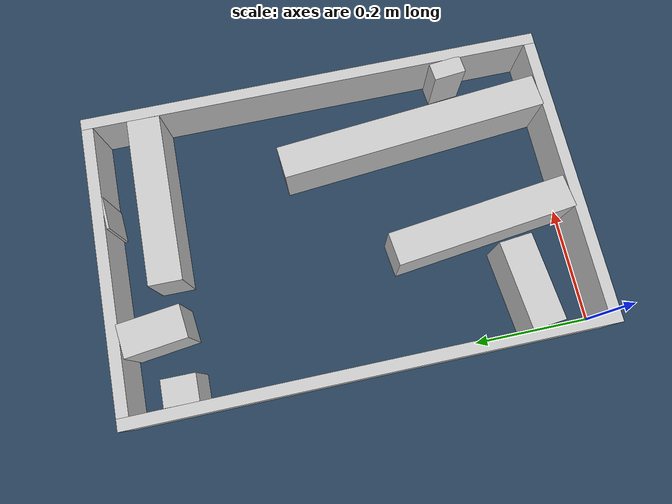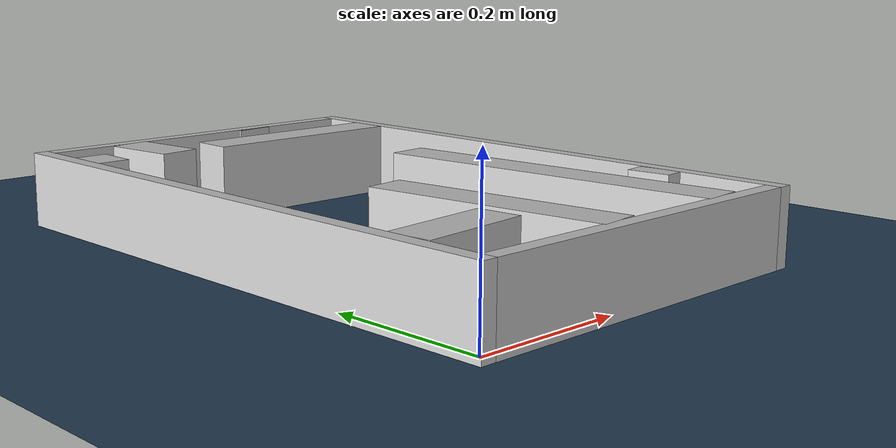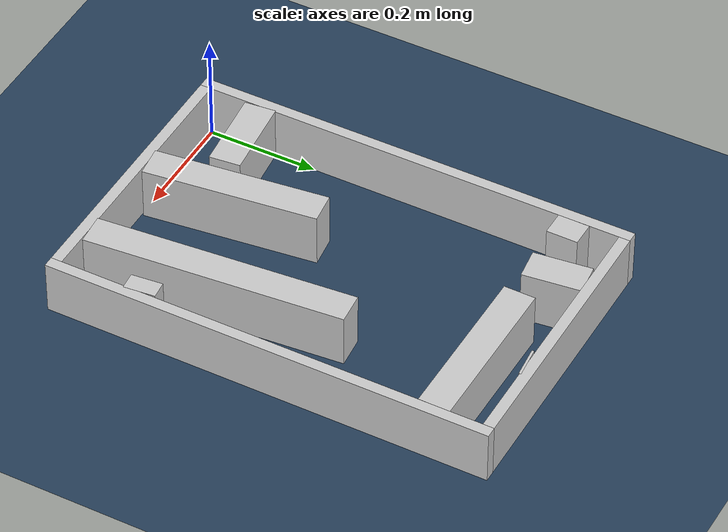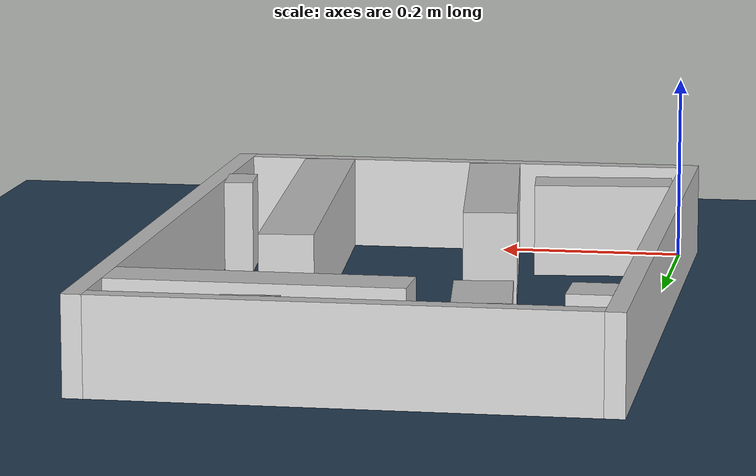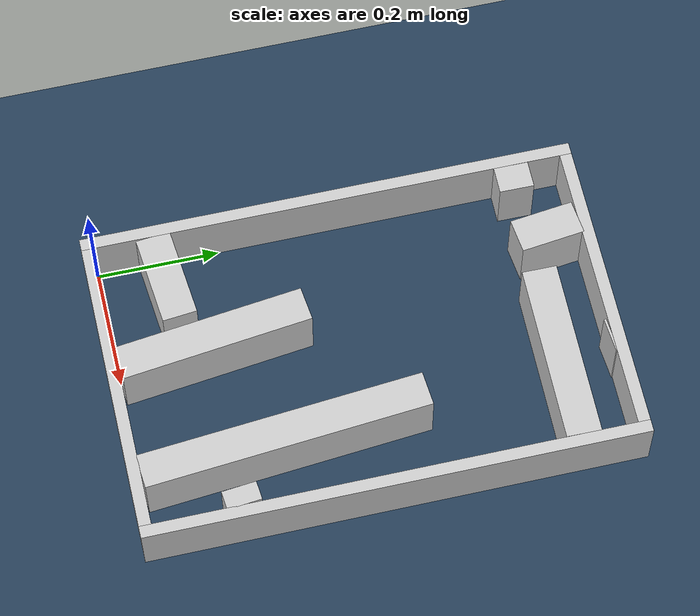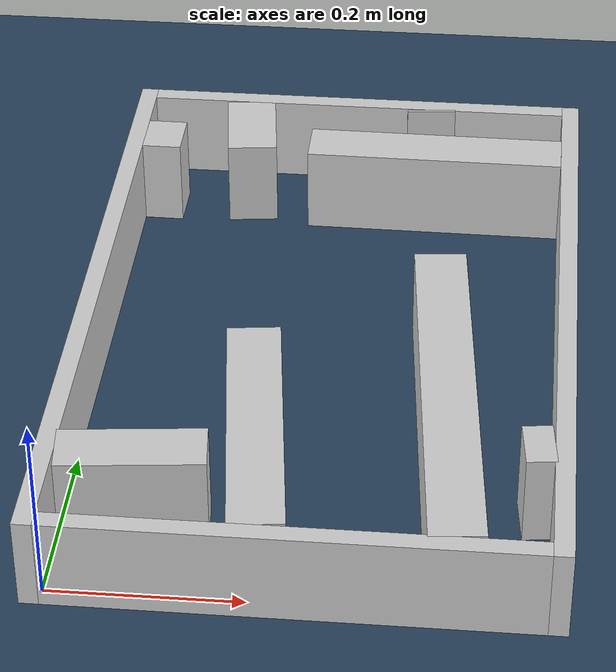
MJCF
<?xml version="1.0" ?>
<mujoco model="generated_real_template">
  <compiler angle="degree"/>
  <option timestep="0.002" integrator="implicitfast" iterations="100" cone="elliptic"/>
  <default>
    <geom density="1"/>
  </default>
  <asset>
    <texture builtin="gradient" height="3072" rgb1="0.3 0.5 0.7" rgb2="0 0 0" type="skybox" width="512"/>
    <texture builtin="checker" height="300" mark="edge" markrgb="0.8 0.8 0.8" name="groundplane" rgb1="0.2 0.3 0.4" rgb2="0.1 0.2 0.3" type="2d" width="300"/>
    <material name="groundplane" reflectance="0.2" texrepeat="5 5" texture="groundplane" texuniform="true"/>
  </asset>
  <worldbody>
    <light dir="0 0 -1" directional="true" pos="0 0 1.5"/>
    <geom name="floor" type="plane" condim="4" friction="0.5 0.005 0.001" material="groundplane" size="0 0 0.05"/>
    <body name="walls">
      <geom name="wall_boundary_left" type="box" condim="4" friction="1.0 0.005 0.0001" rgba="0.8 0.8 0.8 1" pos="-0.010000 0.387500 0.050000" euler="0 0 0.000000" size="0.010000 0.407500 0.050000"/>
      <geom name="wall_boundary_right" type="box" condim="4" friction="1.0 0.005 0.0001" rgba="0.8 0.8 0.8 1" pos="0.500000 0.387500 0.050000" euler="0 0 0.000000" size="0.010000 0.407500 0.050000"/>
      <geom name="wall_boundary_bottom" type="box" condim="4" friction="1.0 0.005 0.0001" rgba="0.8 0.8 0.8 1" pos="0.245000 -0.010000 0.050000" euler="0 0 0.000000" size="0.245000 0.010000 0.050000"/>
      <geom name="wall_boundary_top" type="box" condim="4" friction="1.0 0.005 0.0001" rgba="0.8 0.8 0.8 1" pos="0.245000 0.785000 0.050000" euler="0 0 0.000000" size="0.245000 0.010000 0.050000"/>
      <geom name="wall_inner_1_1" type="box" condim="4" friction="1.0 0.005 0.0001" rgba="0.8 0.8 0.8 1" pos="0.342573 0.689372 0.050000" euler="0 0 179.508623" size="0.147432 0.028500 0.050000"/>
      <geom name="wall_inner_1_2" type="box" condim="4" friction="1.0 0.005 0.0001" rgba="0.8 0.8 0.8 1" pos="0.022352 0.692119 0.050000" euler="0 0 179.508623" size="0.022353 0.028500 0.050000"/>
      <geom name="wall_inner_2_1" type="box" condim="4" friction="1.0 0.005 0.0001" rgba="0.8 0.8 0.8 1" pos="0.380231 0.234040 0.050000" euler="0 0 94.918870" size="0.234905 0.028500 0.050000"/>
      <geom name="wall_inner_2_2" type="box" condim="4" friction="1.0 0.005 0.0001" rgba="0.8 0.8 0.8 1" pos="0.333854 0.772917 0.050000" euler="0 0 94.918870" size="0.002091 0.028500 0.050000"/>
      <geom name="wall_inner_3_1" type="box" condim="4" friction="1.0 0.005 0.0001" rgba="0.8 0.8 0.8 1" pos="0.191127 0.156770 0.050000" euler="0 0 96.896629" size="0.157912 0.028500 0.050000"/>
      <geom name="wall_inner_3_2" type="box" condim="4" friction="1.0 0.005 0.0001" rgba="0.8 0.8 0.8 1" pos="0.122690 0.722580 0.050000" euler="0 0 96.896629" size="0.052802 0.028500 0.050000"/>
      <geom name="wall_inner_4_1" type="box" condim="4" friction="1.0 0.005 0.0001" rgba="0.8 0.8 0.8 1" pos="0.474392 0.145327 0.050000" euler="0 0 -174.186124" size="0.015689 0.028500 0.050000"/>
      <geom name="wall_inner_4_2" type="box" condim="4" friction="1.0 0.005 0.0001" rgba="0.8 0.8 0.8 1" pos="0.074861 0.104647 0.050000" euler="0 0 -174.186124" size="0.075248 0.028500 0.050000"/>
    </body>
  </worldbody>
</mujoco>
